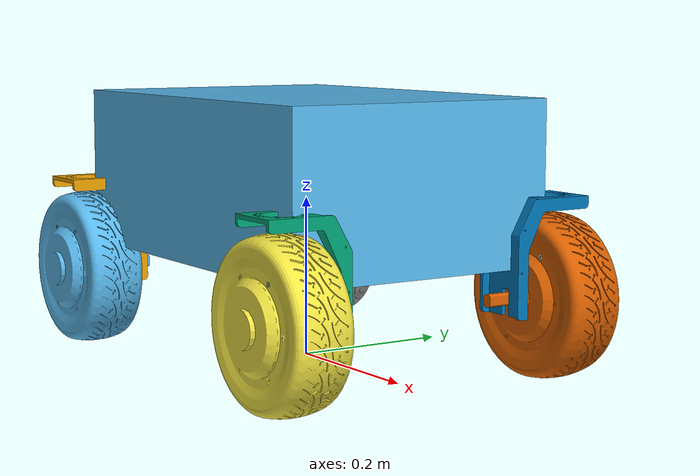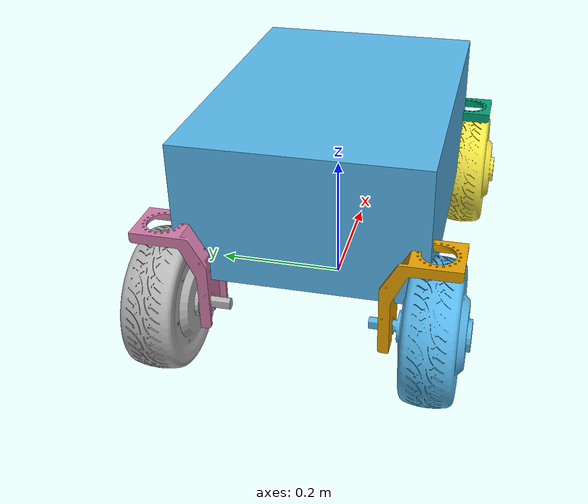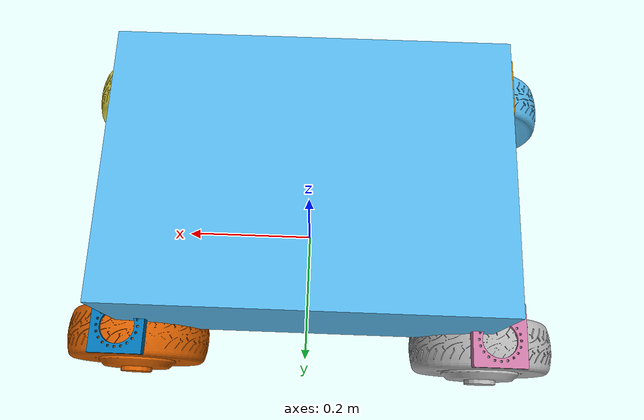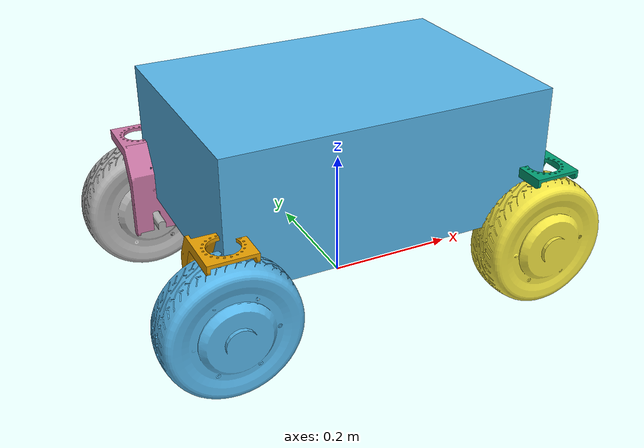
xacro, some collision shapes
<?xml version="1.0"?>
<robot name="Split_Aloha" xmlns:xacro="http://www.ros.org/wiki/xacro">
  <xacro:arg name="type" default="ranger_mini"/>
  <!-- Isaac asset import: hide sensor_models meshes that Isaac already provides. -->
  <xacro:arg name="isaac" default="false"/>

  <xacro:if value="${'$(arg type)' == 'ranger_mini'}">
    <xacro:include filename="$(find split_aloha_description)/xacro/components/ranger_mini.xacro"/>
    <xacro:RangerMini enable_wheel_joints="true"/>
  </xacro:if>

  <xacro:if value="${'$(arg type)' == 'body'}">
    <link name="base"/>
    <xacro:include filename="$(find split_aloha_description)/xacro/components/body.xacro"/>
    <xacro:Body parent="base" isaac="$(arg isaac)"/>
  </xacro:if>
</robot>

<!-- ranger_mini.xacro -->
<robot xmlns:xacro="http://ros.org/wiki/xacro">
  <xacro:macro name="RangerMini" params="enable_wheel_joints:=false">
    <xacro:property name="steer_joint_type" value="fixed"/>
    <xacro:property name="wheel_joint_type" value="fixed"/>
    <xacro:if value="${enable_wheel_joints}">
      <xacro:property name="steer_joint_type" value="revolute"/>
      <xacro:property name="wheel_joint_type" value="continuous"/>
    </xacro:if>

    <link name="base_link"/>
    <joint name="base_link_joint" type="fixed">
      <parent link="base_link"/>
      <child link="base"/>
      <origin xyz="0 0 0.33"/>
    </joint>

    <link name="base">
      <inertial>
        <origin xyz="-0.0242698272228022 -0.0030308024613212 0.0544267444673498"/>
        <mass value="10"/>
        <inertia ixx="0.1354" ixy="0.0" ixz="0.0" iyy="0.2417" iyz="0.0" izz="0.3085"/>
      </inertial>
      <visual>
        <geometry>
          <mesh filename="file://$(find split_aloha_description)/meshes/ranger_mini/base.obj"/>
        </geometry>
      </visual>
      <collision>
        <origin xyz="0 0 -0.1"/>
        <geometry>
          <box size="0.5 0.35 0.2"/>
        </geometry>
      </collision>
    </link>

    <link name="fr_steering_wheel_link">
      <inertial>
        <origin xyz="1.8493E-05 1.2713E-06 0.043679"/>
        <mass value="1"/>
        <inertia
            ixx="0.0063625"
            ixy="-1.0581E-07"
            ixz="-4.0831E-07"
            iyy="0.006363"
            iyz="-3.4944E-08"
            izz="0.010465"/>
      </inertial>
      <visual>
        <geometry>
          <mesh filename="file://$(find split_aloha_description)/meshes/ranger_mini/steering_wheel.obj"/>
        </geometry>
      </visual>
    </link>

    <joint name="fr_steering_joint" type="${steer_joint_type}">
      <origin xyz="0.241 -0.185 -0.115"/>
      <parent link="base"/>
      <child link="fr_steering_wheel_link"/>
      <axis xyz="0 0 1"/>
      <xacro:if value="${enable_wheel_joints}">
        <limit effort="5" velocity="6.28" lower="-3.14159" upper="3.14159"/>
      </xacro:if>
    </joint>

    <link name="fr_wheel_link">
      <inertial>
        <mass value="8"/>
        <inertia ixx="0.02047" ixy="0.0" ixz="0.0" iyy="0.02047" iyz="0.0" izz="0.0324"/>
      </inertial>
      <visual>
        <origin xyz="0 0 0" rpy="3.14 0 0"/>
        <geometry>
          <mesh filename="file://$(find split_aloha_description)/meshes/ranger_mini/wheel.obj"/>
        </geometry>
      </visual>
      <collision>
        <origin xyz="0 0 -0.005" rpy="1.57 0 0"/>
        <geometry>
          <cylinder length="0.08" radius="0.09"/>
        </geometry>
      </collision>
    </link>

    <joint name="fr_wheel" type="${wheel_joint_type}">
      <origin xyz="0.0 0.0 -0.12"/>
      <parent link="fr_steering_wheel_link"/>
      <child link="fr_wheel_link"/>
      <axis xyz="0 1 0"/>
    </joint>

    <link name="fl_steering_wheel_link">
      <inertial>
        <origin xyz="-0.0017956 -9.6304E-08 0.043642"/>
        <mass value="1"/>
        <inertia
            ixx="0.0063695"
            ixy="-2.1067E-08"
            ixz="-0.00016867"
            iyy="0.006363"
            iyz="-1.0301E-08"
            izz="0.010458"/>
      </inertial>
      <visual>
        <origin rpy="0 0 3.14"/>
        <geometry>
          <mesh filename="file://$(find split_aloha_description)/meshes/ranger_mini/steering_wheel.obj"/>
        </geometry>
      </visual>
    </link>

    <joint name="fl_steering_joint" type="${steer_joint_type}">
      <origin xyz="0.241 0.185 -0.115"/>
      <parent link="base"/>
      <child link="fl_steering_wheel_link"/>
      <axis xyz="0 0 1"/>
      <xacro:if value="${enable_wheel_joints}">
        <limit effort="5" velocity="6.28" lower="-3.14159" upper="3.14159"/>
      </xacro:if>
    </joint>

    <link name="fl_wheel_link">
      <inertial>
        <mass value="8"/>
        <inertia ixx="0.02047" ixy="0.0" ixz="0.0" iyy="0.02047" iyz="0.0" izz="0.0324"/>
      </inertial>
      <visual>
        <geometry>
          <mesh filename="file://$(find split_aloha_description)/meshes/ranger_mini/wheel.obj"/>
        </geometry>
      </visual>
      <collision>
        <origin xyz="0 0 -0.005" rpy="1.57 0 0"/>
        <geometry>
          <cylinder length="0.08" radius="0.09"/>
        </geometry>
      </collision>
    </link>

    <joint name="fl_wheel" type="${wheel_joint_type}">
      <origin xyz="0.0 0.0 -0.12"/>
      <parent link="fl_steering_wheel_link"/>
      <child link="fl_wheel_link"/>
      <axis xyz="0 1 0"/>
    </joint>

    <link name="rl_steering_wheel_link">
      <inertial>
        <origin xyz="-0.00017093 6.1255E-08 0.043678"/>
        <mass value="1"/>
        <inertia
            ixx="0.0063627"
            ixy="-2.1069E-08"
            ixz="-1.587E-05"
            iyy="0.006363"
            iyz="9.3201E-09"
            izz="0.010465"/>
      </inertial>
      <visual>
        <origin rpy="0 0 3.14"/>
        <geometry>
          <mesh filename="file://$(find split_aloha_description)/meshes/ranger_mini/steering_wheel.obj"/>
        </geometry>
      </visual>
    </link>

    <joint name="rl_steering_joint" type="${steer_joint_type}">
      <origin xyz="-0.253 0.185 -0.115"/>
      <parent link="base"/>
      <child link="rl_steering_wheel_link"/>
      <axis xyz="0 0 1"/>
      <xacro:if value="${enable_wheel_joints}">
        <limit effort="5" velocity="6.28" lower="-3.14159" upper="3.14159"/>
      </xacro:if>
    </joint>

    <link name="rl_wheel_link">
      <inertial>
        <mass value="8"/>
        <inertia ixx="0.02047" ixy="0.0" ixz="0.0" iyy="0.02047" iyz="0.0" izz="0.0324"/>
      </inertial>
      <visual>
        <geometry>
          <mesh filename="file://$(find split_aloha_description)/meshes/ranger_mini/wheel.obj"/>
        </geometry>
      </visual>
      <collision>
        <origin xyz="0.00 0.00 -0.005" rpy="1.57 0 0"/>
        <geometry>
          <cylinder length="0.08" radius="0.09"/>
        </geometry>
      </collision>
    </link>

    <joint name="rl_wheel" type="${wheel_joint_type}">
      <origin xyz="0.0 0.0 -0.12"/>
      <parent link="rl_steering_wheel_link"/>
      <child link="rl_wheel_link"/>
      <axis xyz="0 1 0"/>
    </joint>

    <link name="rr_steering_wheel_link">
      <inertial>
        <origin xyz="-0.00017093 -6.1255E-08 0.043678"/>
        <mass value="1"/>
        <inertia
            ixx="0.0063627"
            ixy="-2.1069E-08"
            ixz="-1.587E-05"
            iyy="0.006363"
            iyz="9.3201E-09"
            izz="0.010465"/>
      </inertial>
      <visual>
        <geometry>
          <mesh filename="file://$(find split_aloha_description)/meshes/ranger_mini/steering_wheel.obj"/>
        </geometry>
      </visual>
    </link>

    <joint name="rr_steering_joint" type="${steer_joint_type}">
      <origin xyz="-0.253 -0.185 -0.115"/>
      <parent link="base"/>
      <child link="rr_steering_wheel_link"/>
      <axis xyz="0 0 1"/>
      <xacro:if value="${enable_wheel_joints}">
        <limit effort="5" velocity="6.28" lower="-3.14159" upper="3.14159"/>
      </xacro:if>
    </joint>

    <link name="rr_wheel_link">
      <inertial>
        <mass value="8"/>
        <inertia ixx="0.02047" ixy="0.0" ixz="0.0" iyy="0.02047" iyz="0.0" izz="0.0324"/>
      </inertial>
      <visual>
        <origin rpy="3.14 0 0"/>
        <geometry>
          <mesh filename="file://$(find split_aloha_description)/meshes/ranger_mini/wheel.obj"/>
        </geometry>
      </visual>
      <collision>
        <origin xyz="0.00 0 -0.005" rpy="1.57 0 0"/>
        <geometry>
          <cylinder length="0.08" radius="0.09"/>
        </geometry>
      </collision>
    </link>

    <joint name="rr_wheel" type="${wheel_joint_type}">
      <origin xyz="0.0 0.0 -0.12"/>
      <parent link="rr_steering_wheel_link"/>
      <child link="rr_wheel_link"/>
      <axis xyz="0 1 0"/>
    </joint>
  </xacro:macro>
</robot>
